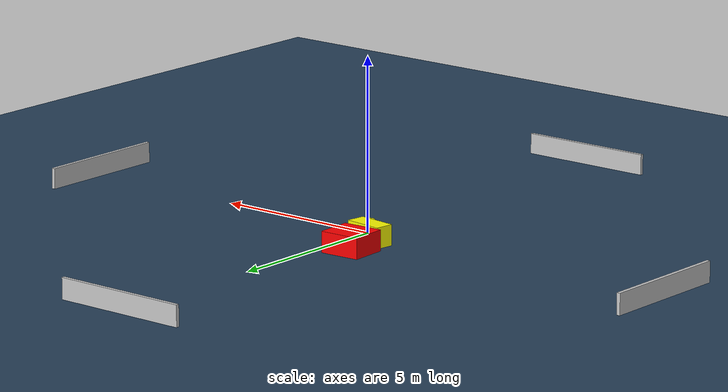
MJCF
<?xml version="1.0" ?>
<mujoco model="generated_environment">
  <option timestep="0.01" integrator="RK4" cone="elliptic"/>
  <default>
    <geom density="1"/>
  </default>
  <asset>
    <texture builtin="gradient" height="3072" name="skybox" rgb1="0.3 0.5 0.7" rgb2="0 0 0" type="skybox" width="512"/>
    <texture builtin="checker" height="300" name="groundplane" rgb1="0.2 0.3 0.4" rgb2="0.1 0.2 0.3" type="2d" width="300"/>
    <material name="groundplane" reflectance="0.2" texrepeat="5 5" texture="groundplane"/>
  </asset>
  <worldbody>
    <light dir="0 0 -1" directional="true" pos="0 0 1.5"/>
    <geom condim="3" friction="0.5 0.005 0.001" material="groundplane" name="floor" pos="0 0 0" size="0 0 0.05" type="plane"/>
    <body name="walls">
      <geom name="wall_1" condim="4" pos="-10.0 0.0 0.3" rgba="0.800000011920929 0.800000011920929 0.800000011920929 1.0" size="0.05 2.0 0.3" type="box"/>
      <geom name="wall_2" condim="4" pos="10.0 0.0 0.3" rgba="0.800000011920929 0.800000011920929 0.800000011920929 1.0" size="0.05 2.0 0.3" type="box"/>
      <geom name="wall_3" condim="4" pos="0.0 -10.0 0.3" rgba="0.800000011920929 0.800000011920929 0.800000011920929 1.0" size="2.0 0.05 0.3" type="box"/>
      <geom name="wall_4" condim="4" pos="0.0 10.0 0.3" rgba="0.800000011920929 0.800000011920929 0.800000011920929 1.0" size="2.0 0.05 0.3" type="box"/>
    </body>
    <body name="robot">
      <joint name="joint_x" type="slide" pos="0 0 0" axis="1 0 0"/>
      <joint name="joint_y" type="slide" pos="0 0 0" axis="0 1 0"/>
      <geom name="robot" type="cylinder" pos="0.0 0.0 0.2" size="0.2 0.2 0.0" mass="5.0" friction="1.0 0.005 0.0001" condim="4" rgba="1.0 1.0 0.0 1.0"/>
    </body>
    <body name="obstacle_1_movable">
      <geom name="obstacle_1_movable" condim="4" pos="-0.6868486875759005 0.7405083256200272 0.3" euler="0 0 353.01501774656236" friction="0.0 0.005 0.001" rgba="1.0 1.0 0.0 1.0" size="0.5689016937398554 0.2728873372319252 0.3" type="box" mass="0.1"/>
      <joint type="free"/>
    </body>
    <body name="obstacle_2_static">
      <geom name="obstacle_2_static" condim="4" pos="-0.8358104505959645 1.7238608947621878 0.3" euler="0 0 182.91344588746034" friction="0.0 0.005 0.001" rgba="1.0 0.0 0.0 1.0" size="0.5948579970406025 0.5364553679278022 0.3" type="box"/>
    </body>
  </worldbody>
  <actuator>
    <motor name="actuator_x" joint="joint_x" gear="1" ctrlrange="-1 1"/>
    <motor name="actuator_y" joint="joint_y" gear="1" ctrlrange="-1 1"/>
  </actuator>
</mujoco>
